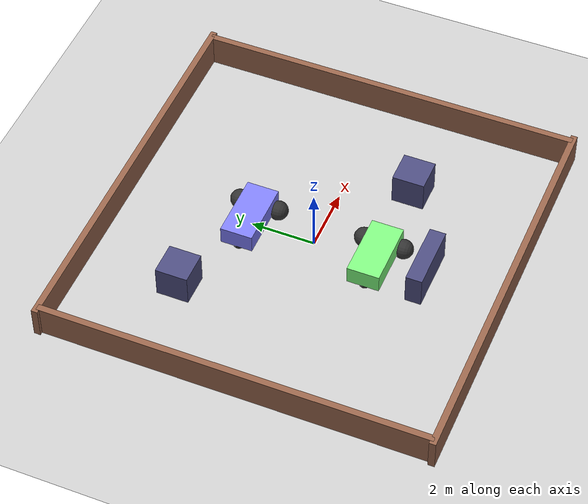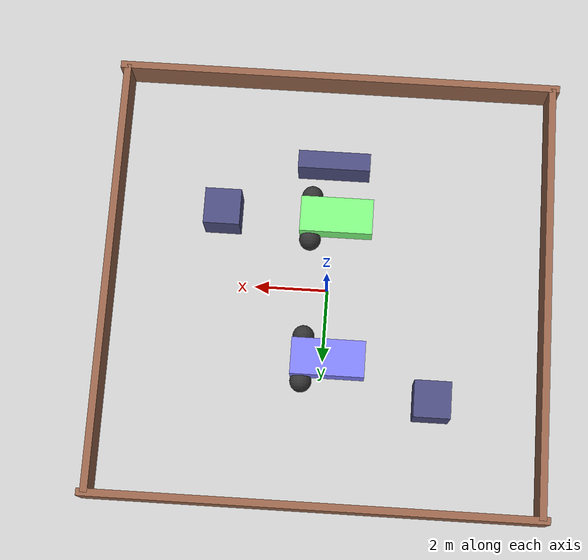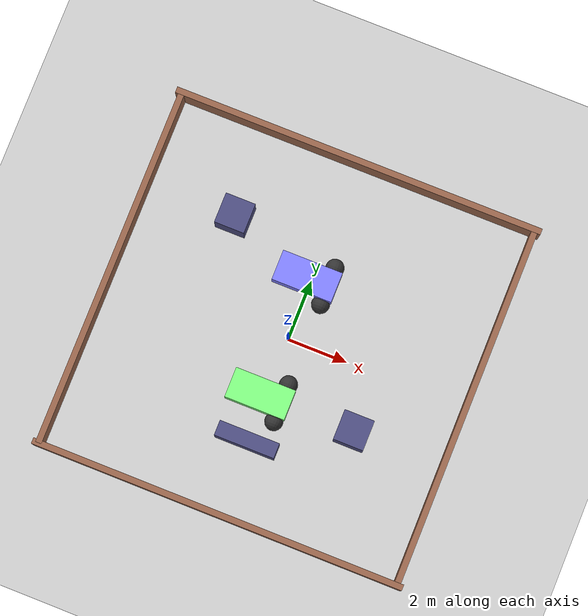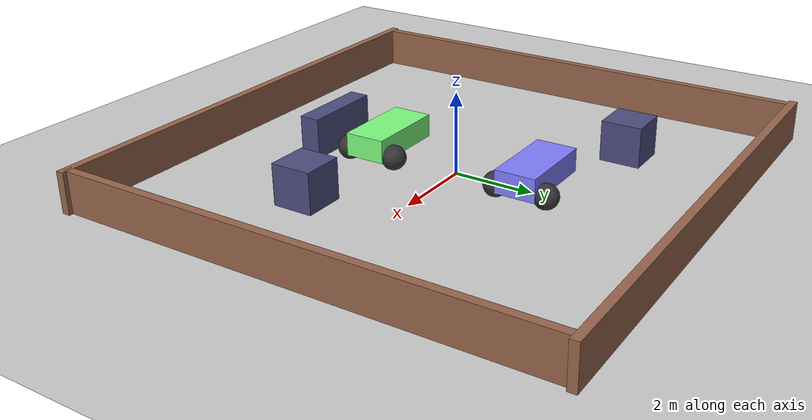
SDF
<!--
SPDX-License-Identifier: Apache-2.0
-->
<?xml version="1.0" ?>
<sdf version="1.6">
  <world name="diff_drive">

    <physics name="1ms" type="ignored">
      <max_step_size>0.001</max_step_size>
      <real_time_factor>1.0</real_time_factor>
    </physics>
    <plugin
      filename="ignition-gazebo-sensors-system"
      name="ignition::gazebo::systems::Sensors">
      <render_engine>ogre2</render_engine>
    </plugin>
    <plugin
      filename="ignition-gazebo-physics-system"
      name="gz::sim::systems::Physics">
    </plugin>
    <plugin
      filename="ignition-gazebo-user-commands-system"
      name="gz::sim::systems::UserCommands">
    </plugin>
    <plugin
      filename="ignition-gazebo-scene-broadcaster-system"
      name="gz::sim::systems::SceneBroadcaster">
    </plugin>

    <light type="directional" name="sun">
      <cast_shadows>true</cast_shadows>
      <pose>0 0 10 0 0 0</pose>
      <diffuse>1 1 1 1</diffuse>
      <specular>0.5 0.5 0.5 1</specular>
      <attenuation>
        <range>1000</range>
        <constant>0.9</constant>
        <linear>0.01</linear>
        <quadratic>0.001</quadratic>
      </attenuation>
      <direction>-0.5 0.1 -0.9</direction>
    </light>

    <model name="ground_plane">
      <static>true</static>
      <link name="link">
        <collision name="collision">
          <geometry>
            <plane>
              <normal>0 0 1</normal>
              <size>100 100</size>
            </plane>
          </geometry>
        </collision>
        <visual name="visual">
          <geometry>
            <plane>
              <normal>0 0 1</normal>
              <size>100 100</size>
            </plane>
          </geometry>
          <material>
            <ambient>0.8 0.8 0.8 1</ambient>
            <diffuse>0.8 0.8 0.8 1</diffuse>
            <specular>0.8 0.8 0.8 1</specular>
          </material>
        </visual>
      </link>
    </model>

    <model name="wall_north">
      <static>true</static>
      <pose>0 6 0.5 0 0 0</pose>
      <link name="link">
        <collision name="collision">
          <geometry><box><size>12.4 0.2 1.0</size></box></geometry>
        </collision>
        <visual name="visual">
          <geometry><box><size>12.4 0.2 1.0</size></box></geometry>
          <material>
            <ambient>0.6 0.4 0.3 1</ambient>
            <diffuse>0.6 0.4 0.3 1</diffuse>
          </material>
        </visual>
      </link>
    </model>
    <model name="wall_south">
      <static>true</static>
      <pose>0 -6 0.5 0 0 0</pose>
      <link name="link">
        <collision name="collision">
          <geometry><box><size>12.4 0.2 1.0</size></box></geometry>
        </collision>
        <visual name="visual">
          <geometry><box><size>12.4 0.2 1.0</size></box></geometry>
          <material>
            <ambient>0.6 0.4 0.3 1</ambient>
            <diffuse>0.6 0.4 0.3 1</diffuse>
          </material>
        </visual>
      </link>
    </model>
    <model name="wall_east">
      <static>true</static>
      <pose>6 0 0.5 0 0 0</pose>
      <link name="link">
        <collision name="collision">
          <geometry><box><size>0.2 12.0 1.0</size></box></geometry>
        </collision>
        <visual name="visual">
          <geometry><box><size>0.2 12.0 1.0</size></box></geometry>
          <material>
            <ambient>0.6 0.4 0.3 1</ambient>
            <diffuse>0.6 0.4 0.3 1</diffuse>
          </material>
        </visual>
      </link>
    </model>
    <model name="wall_west">
      <static>true</static>
      <pose>-6 0 0.5 0 0 0</pose>
      <link name="link">
        <collision name="collision">
          <geometry><box><size>0.2 12.0 1.0</size></box></geometry>
        </collision>
        <visual name="visual">
          <geometry><box><size>0.2 12.0 1.0</size></box></geometry>
          <material>
            <ambient>0.6 0.4 0.3 1</ambient>
            <diffuse>0.6 0.4 0.3 1</diffuse>
          </material>
        </visual>
      </link>
    </model>
    <model name="obstacle_1">
      <static>true</static>
      <pose>3.0 -2.0 0.5 0 0 0</pose>
      <link name="link">
        <collision name="collision">
          <geometry><box><size>1.0 1.0 1.0</size></box></geometry>
        </collision>
        <visual name="visual">
          <geometry><box><size>1.0 1.0 1.0</size></box></geometry>
          <material>
            <ambient>0.3 0.3 0.5 1</ambient>
            <diffuse>0.3 0.3 0.5 1</diffuse>
          </material>
        </visual>
      </link>
    </model>
    <model name="obstacle_2">
      <static>true</static>
      <pose>-3.0 3.0 0.5 0 0 0</pose>
      <link name="link">
        <collision name="collision">
          <geometry><box><size>1.0 1.0 1.0</size></box></geometry>
        </collision>
        <visual name="visual">
          <geometry><box><size>1.0 1.0 1.0</size></box></geometry>
          <material>
            <ambient>0.3 0.3 0.5 1</ambient>
            <diffuse>0.3 0.3 0.5 1</diffuse>
          </material>
        </visual>
      </link>
    </model>
    <model name="obstacle_3">
      <static>true</static>
      <pose>0.0 -3.5 0.5 0 0 0</pose>
      <link name="link">
        <collision name="collision">
          <geometry><box><size>2.0 0.5 1.0</size></box></geometry>
        </collision>
        <visual name="visual">
          <geometry><box><size>2.0 0.5 1.0</size></box></geometry>
          <material>
            <ambient>0.3 0.3 0.5 1</ambient>
            <diffuse>0.3 0.3 0.5 1</diffuse>
          </material>
        </visual>
      </link>
    </model>

    <model name='vehicle_blue'>
      <pose>0 2 0.325 0 -0 0</pose>

      <link name='chassis'>
        <pose>-0.151427 -0 0.175 0 -0 0</pose>
        <inertial>
          <mass>1.14395</mass>
          <inertia>
            <ixx>0.126164</ixx>
            <ixy>0</ixy>
            <ixz>0</ixz>
            <iyy>0.416519</iyy>
            <iyz>0</iyz>
            <izz>0.481014</izz>
          </inertia>
        </inertial>
        <visual name='visual'>
          <geometry>
            <box>
              <size>2.01142 1 0.568726</size>
            </box>
          </geometry>
          <material>
            <ambient>0.5 0.5 1.0 1</ambient>
            <diffuse>0.5 0.5 1.0 1</diffuse>
            <specular>0.0 0.0 1.0 1</specular>
          </material>
        </visual>
        <collision name='collision'>
          <geometry>
            <box>
              <size>2.01142 1 0.568726</size>
            </box>
          </geometry>
        </collision>
              <sensor name="front_camera" type="camera">
          <pose>0.8 0 0.3 0 0 0</pose>
          <camera>
            <horizontal_fov>1.047</horizontal_fov>
            <image><width>320</width><height>240</height></image>
            <clip><near>0.1</near><far>100</far></clip>
          </camera>
          <always_on>1</always_on>
          <update_rate>15</update_rate>
          <topic>camera</topic>
        </sensor>
        <sensor name="lidar" type="gpu_lidar">
          <pose>0.8 0 0.5 0 0 0</pose>
          <topic>scan</topic>
          <update_rate>10</update_rate>
          <ignition_frame_id>lidar_link</ignition_frame_id>
          <lidar>
            <scan>
              <horizontal>
                <samples>360</samples>
                <resolution>1</resolution>
                <min_angle>-3.14159</min_angle>
                <max_angle>3.14159</max_angle>
              </horizontal>
            </scan>
            <range><min>0.12</min><max>20.0</max><resolution>0.015</resolution></range>
          </lidar>
          <always_on>1</always_on>
          <visualize>false</visualize>
        </sensor>

</link>

      <link name='left_wheel'>
        <pose>0.554283 0.625029 -0.025 -1.5707 0 0</pose>
        <inertial>
          <mass>2</mass>
          <inertia>
            <ixx>0.145833</ixx>
            <ixy>0</ixy>
            <ixz>0</ixz>
            <iyy>0.145833</iyy>
            <iyz>0</iyz>
            <izz>0.125</izz>
          </inertia>
        </inertial>
        <visual name='visual'>
          <geometry>
            <sphere>
              <radius>0.3</radius>
            </sphere>
          </geometry>
          <material>
            <ambient>0.2 0.2 0.2 1</ambient>
            <diffuse>0.2 0.2 0.2 1</diffuse>
            <specular>0.2 0.2 0.2 1</specular>
          </material>
        </visual>
        <collision name='collision'>
          <geometry>
            <sphere>
              <radius>0.3</radius>
            </sphere>
          </geometry>
        </collision>
      </link>

      <link name='right_wheel'>
        <pose>0.554282 -0.625029 -0.025 -1.5707 0 0</pose>
        <inertial>
          <mass>2</mass>
          <inertia>
            <ixx>0.145833</ixx>
            <ixy>0</ixy>
            <ixz>0</ixz>
            <iyy>0.145833</iyy>
            <iyz>0</iyz>
            <izz>0.125</izz>
          </inertia>
        </inertial>
        <visual name='visual'>
          <geometry>
            <sphere>
              <radius>0.3</radius>
            </sphere>
          </geometry>
          <material>
            <ambient>0.2 0.2 0.2 1</ambient>
            <diffuse>0.2 0.2 0.2 1</diffuse>
            <specular>0.2 0.2 0.2 1</specular>
          </material>
        </visual>
        <collision name='collision'>
          <geometry>
            <sphere>
              <radius>0.3</radius>
            </sphere>
          </geometry>
        </collision>
      </link>

      <link name='caster'>
        <pose>-0.957138 -0 -0.125 0 -0 0</pose>
        <inertial>
          <mass>1</mass>
          <inertia>
            <ixx>0.1</ixx>
            <ixy>0</ixy>
            <ixz>0</ixz>
            <iyy>0.1</iyy>
            <iyz>0</iyz>
            <izz>0.1</izz>
          </inertia>
        </inertial>
        <visual name='visual'>
          <geometry>
            <sphere>
              <radius>0.2</radius>
            </sphere>
          </geometry>
          <material>
            <ambient>0.2 0.2 0.2 1</ambient>
            <diffuse>0.2 0.2 0.2 1</diffuse>
            <specular>0.2 0.2 0.2 1</specular>
          </material>
        </visual>
        <collision name='collision'>
          <geometry>
            <sphere>
              <radius>0.2</radius>
            </sphere>
          </geometry>
        </collision>
      </link>

      <joint name='left_wheel_joint' type='revolute'>
        <parent>chassis</parent>
        <child>left_wheel</child>
        <axis>
          <xyz>0 0 1</xyz>
          <limit>
            <lower>-1.79769e+308</lower>
            <upper>1.79769e+308</upper>
          </limit>
        </axis>
      </joint>

      <joint name='right_wheel_joint' type='revolute'>
        <parent>chassis</parent>
        <child>right_wheel</child>
        <axis>
          <xyz>0 0 1</xyz>
          <limit>
            <lower>-1.79769e+308</lower>
            <upper>1.79769e+308</upper>
          </limit>
        </axis>
      </joint>

      <joint name='caster_wheel' type='ball'>
        <parent>chassis</parent>
        <child>caster</child>
      </joint>

      <plugin
        filename="ignition-gazebo-diff-drive-system"
        name="gz::sim::systems::DiffDrive">
        <left_joint>left_wheel_joint</left_joint>
        <right_joint>right_wheel_joint</right_joint>
        <wheel_separation>1.25</wheel_separation>
        <wheel_radius>0.3</wheel_radius>
        <odom_publish_frequency>50</odom_publish_frequency>
        <frame_id>odom</frame_id>
        <child_frame_id>base_link</child_frame_id>
        <max_linear_acceleration>1</max_linear_acceleration>
        <min_linear_acceleration>-1</min_linear_acceleration>
        <max_angular_acceleration>2</max_angular_acceleration>
        <min_angular_acceleration>-2</min_angular_acceleration>
        <max_linear_velocity>0.5</max_linear_velocity>
        <min_linear_velocity>-0.5</min_linear_velocity>
        <max_angular_velocity>1</max_angular_velocity>
        <min_angular_velocity>-1</min_angular_velocity>
      </plugin>

    </model>

    <model name='vehicle_green'>
      <pose>0 -2 0.325 0 -0 0</pose>

      <link name='chassis'>
        <pose>-0.151427 -0 0.175 0 -0 0</pose>
        <inertial>
          <mass>1.14395</mass>
          <inertia>
            <ixx>0.126164</ixx>
            <ixy>0</ixy>
            <ixz>0</ixz>
            <iyy>0.416519</iyy>
            <iyz>0</iyz>
            <izz>0.481014</izz>
          </inertia>
        </inertial>
        <visual name='visual'>
          <geometry>
            <box>
              <size>2.01142 1 0.568726</size>
            </box>
          </geometry>
          <material>
            <ambient>0.5 1.0 0.5 1</ambient>
            <diffuse>0.5 1.0 0.5 1</diffuse>
            <specular>0.0 1.0 0.0 1</specular>
          </material>
        </visual>
        <collision name='collision'>
          <geometry>
            <box>
              <size>2.01142 1 0.568726</size>
            </box>
          </geometry>
        </collision>
      </link>

      <link name='left_wheel'>
        <pose>0.554283 0.625029 -0.025 -1.5707 0 0</pose>
        <inertial>
          <mass>2</mass>
          <inertia>
            <ixx>0.145833</ixx>
            <ixy>0</ixy>
            <ixz>0</ixz>
            <iyy>0.145833</iyy>
            <iyz>0</iyz>
            <izz>0.125</izz>
          </inertia>
        </inertial>
        <visual name='visual'>
          <geometry>
            <sphere>
              <radius>0.3</radius>
            </sphere>
          </geometry>
          <material>
            <ambient>0.2 0.2 0.2 1</ambient>
            <diffuse>0.2 0.2 0.2 1</diffuse>
            <specular>0.2 0.2 0.2 1</specular>
          </material>
        </visual>
        <collision name='collision'>
          <geometry>
            <sphere>
              <radius>0.3</radius>
            </sphere>
          </geometry>
        </collision>
      </link>

      <link name='right_wheel'>
        <pose>0.554282 -0.625029 -0.025 -1.5707 0 0</pose>
        <inertial>
          <mass>2</mass>
          <inertia>
            <ixx>0.145833</ixx>
            <ixy>0</ixy>
            <ixz>0</ixz>
            <iyy>0.145833</iyy>
            <iyz>0</iyz>
            <izz>0.125</izz>
          </inertia>
        </inertial>
        <visual name='visual'>
          <geometry>
            <sphere>
              <radius>0.3</radius>
            </sphere>
          </geometry>
          <material>
            <ambient>0.2 0.2 0.2 1</ambient>
            <diffuse>0.2 0.2 0.2 1</diffuse>
            <specular>0.2 0.2 0.2 1</specular>
          </material>
        </visual>
        <collision name='collision'>
          <geometry>
            <sphere>
              <radius>0.3</radius>
            </sphere>
          </geometry>
        </collision>
      </link>

      <link name='caster'>
        <pose>-0.957138 -0 -0.125 0 -0 0</pose>
        <inertial>
          <mass>1</mass>
          <inertia>
            <ixx>0.1</ixx>
            <ixy>0</ixy>
            <ixz>0</ixz>
            <iyy>0.1</iyy>
            <iyz>0</iyz>
            <izz>0.1</izz>
          </inertia>
        </inertial>
        <visual name='visual'>
          <geometry>
            <sphere>
              <radius>0.2</radius>
            </sphere>
          </geometry>
          <material>
            <ambient>0.2 0.2 0.2 1</ambient>
            <diffuse>0.2 0.2 0.2 1</diffuse>
            <specular>0.2 0.2 0.2 1</specular>
          </material>
        </visual>
        <collision name='collision'>
          <geometry>
            <sphere>
              <radius>0.2</radius>
            </sphere>
          </geometry>
        </collision>
      </link>

      <joint name='left_wheel_joint' type='revolute'>
        <parent>chassis</parent>
        <child>left_wheel</child>
        <axis>
          <xyz>0 0 1</xyz>
          <limit>
            <lower>-1.79769e+308</lower>
            <upper>1.79769e+308</upper>
          </limit>
        </axis>
      </joint>

      <joint name='right_wheel_joint' type='revolute'>
        <parent>chassis</parent>
        <child>right_wheel</child>
        <axis>
          <xyz>0 0 1</xyz>
          <limit>
            <lower>-1.79769e+308</lower>
            <upper>1.79769e+308</upper>
          </limit>
        </axis>
      </joint>

      <joint name='caster_wheel' type='ball'>
        <parent>chassis</parent>
        <child>caster</child>
      </joint>

      <plugin
        filename="ignition-gazebo-diff-drive-system"
        name="gz::sim::systems::DiffDrive">
        <left_joint>left_wheel_joint</left_joint>
        <right_joint>right_wheel_joint</right_joint>
        <wheel_separation>1.25</wheel_separation>
        <wheel_radius>0.3</wheel_radius>
        <max_linear_acceleration>1</max_linear_acceleration>
        <min_linear_acceleration>-1</min_linear_acceleration>
        <max_angular_acceleration>2</max_angular_acceleration>
        <min_angular_acceleration>-2</min_angular_acceleration>
        <max_linear_velocity>0.5</max_linear_velocity>
        <min_linear_velocity>-0.5</min_linear_velocity>
        <max_angular_velocity>1</max_angular_velocity>
        <min_angular_velocity>-1</min_angular_velocity>
      </plugin>

    </model>

  </world>
</sdf>
